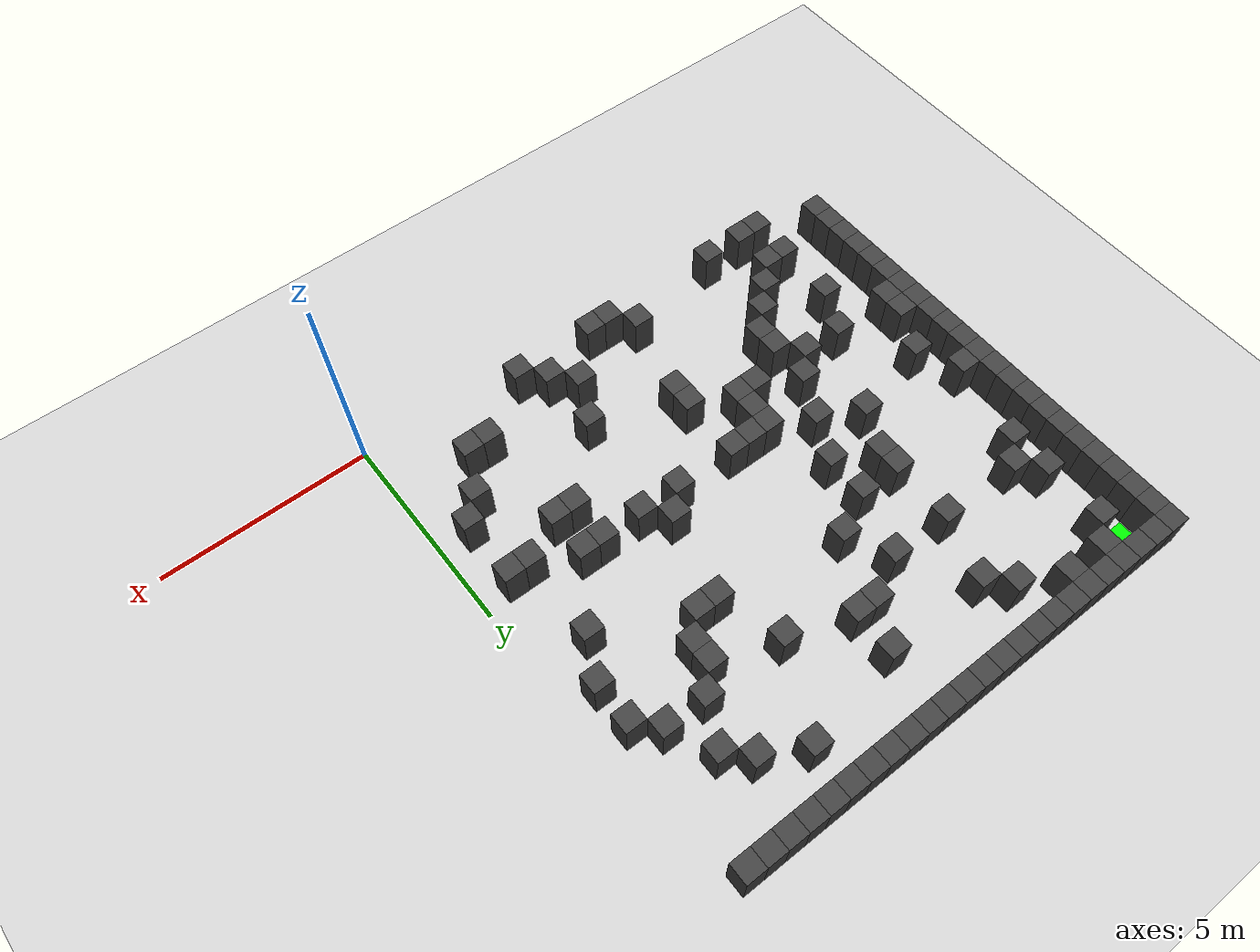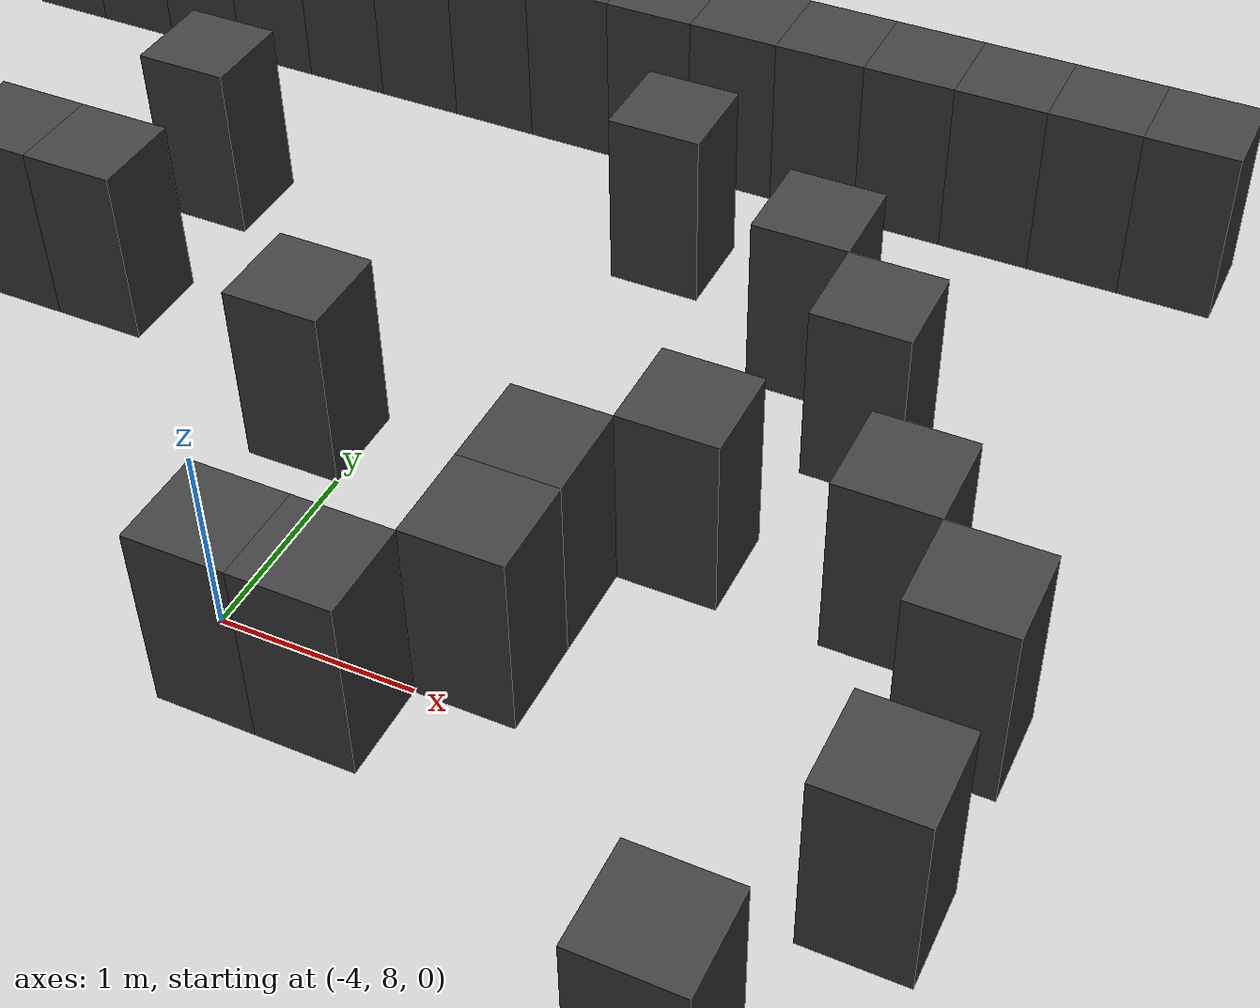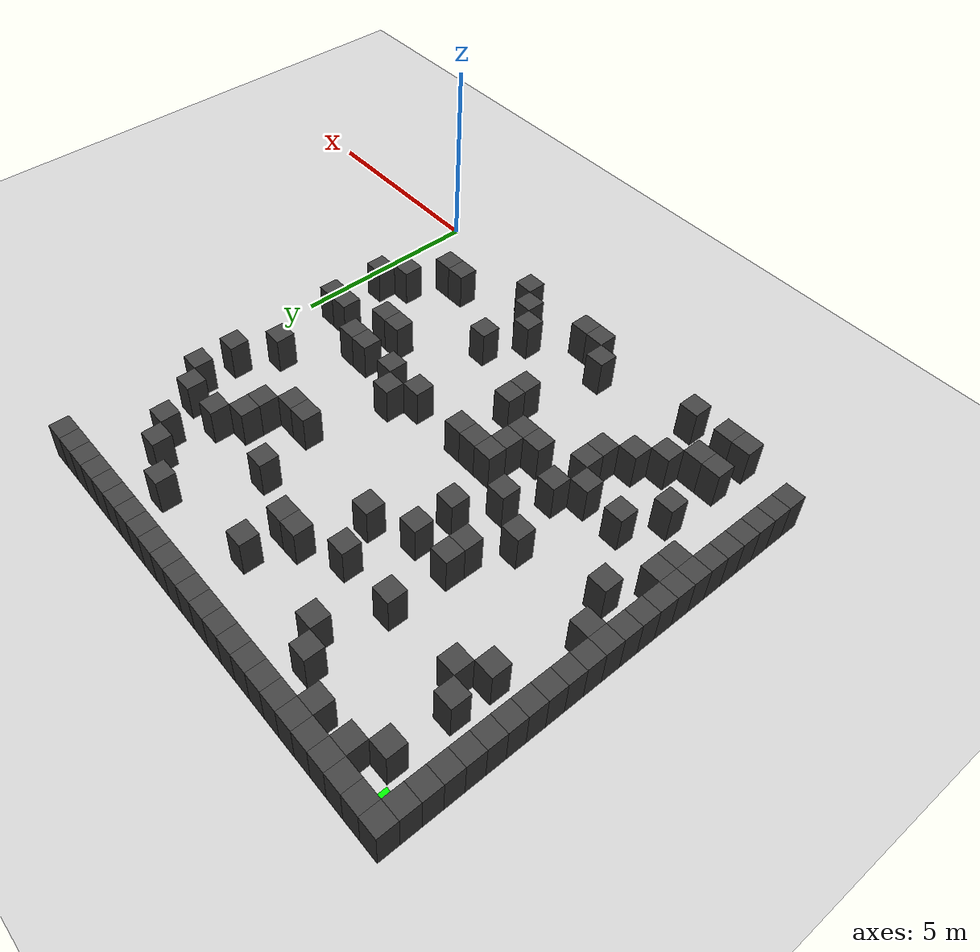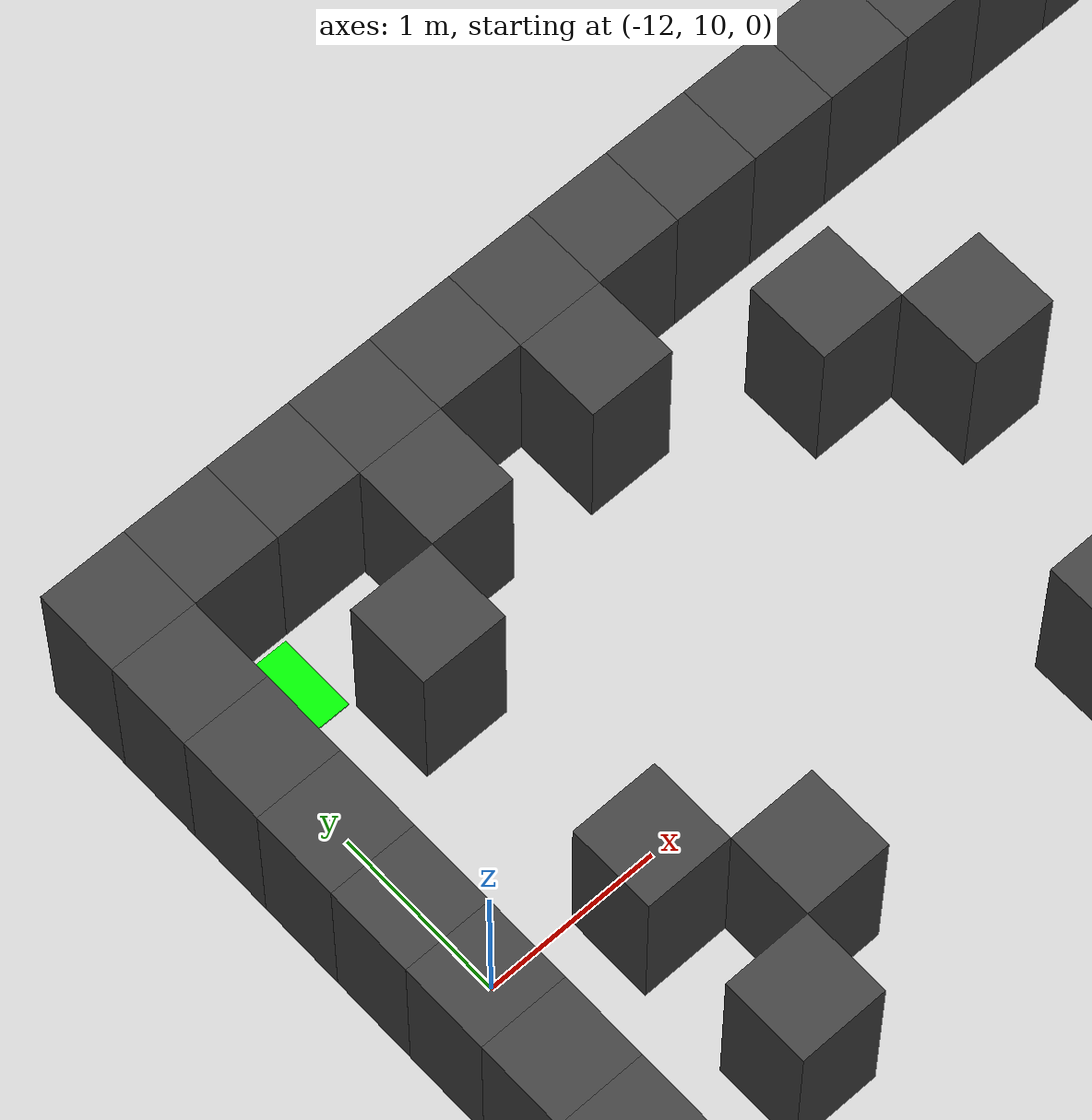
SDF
<sdf version="1.7">
 <world name="map_2523">
  <model name="ground_plane">
   <static>true</static>
   <link name="link">
    <collision name="collision">
     <geometry><plane><normal>0 0 1</normal><size>200 200</size></plane></geometry>
    </collision>
    <visual name="visual">
     <geometry><plane><normal>0 0 1</normal><size>200 200</size></plane></geometry>
     <material><ambient>0.8 0.8 0.8 1</ambient><diffuse>0.8 0.8 0.8 1</diffuse></material>
    </visual>
   </link>
  </model>
  <model name="maze_environment">
   <static>true</static>
   <link name="wall_0">
    <pose>-12.250 12.250 0.500 0 0 0</pose>
    <collision name="col"><geometry><box><size>0.5 0.5 1.0</size></box></geometry></collision>
    <visual name="vis">
     <geometry><box><size>0.5 0.5 1.0</size></box></geometry>
     <material><ambient>0.15 0.15 0.15 1</ambient><diffuse>0.25 0.25 0.25 1</diffuse></material>
    </visual>
   </link>
   <link name="wall_1">
    <pose>-11.750 12.250 0.500 0 0 0</pose>
    <collision name="col"><geometry><box><size>0.5 0.5 1.0</size></box></geometry></collision>
    <visual name="vis">
     <geometry><box><size>0.5 0.5 1.0</size></box></geometry>
     <material><ambient>0.15 0.15 0.15 1</ambient><diffuse>0.25 0.25 0.25 1</diffuse></material>
    </visual>
   </link>
   <link name="wall_2">
    <pose>-11.250 12.250 0.500 0 0 0</pose>
    <collision name="col"><geometry><box><size>0.5 0.5 1.0</size></box></geometry></collision>
    <visual name="vis">
     <geometry><box><size>0.5 0.5 1.0</size></box></geometry>
     <material><ambient>0.15 0.15 0.15 1</ambient><diffuse>0.25 0.25 0.25 1</diffuse></material>
    </visual>
   </link>
   <link name="wall_3">
    <pose>-10.750 12.250 0.500 0 0 0</pose>
    <collision name="col"><geometry><box><size>0.5 0.5 1.0</size></box></geometry></collision>
    <visual name="vis">
     <geometry><box><size>0.5 0.5 1.0</size></box></geometry>
     <material><ambient>0.15 0.15 0.15 1</ambient><diffuse>0.25 0.25 0.25 1</diffuse></material>
    </visual>
   </link>
   <link name="wall_4">
    <pose>-10.250 12.250 0.500 0 0 0</pose>
    <collision name="col"><geometry><box><size>0.5 0.5 1.0</size></box></geometry></collision>
    <visual name="vis">
     <geometry><box><size>0.5 0.5 1.0</size></box></geometry>
     <material><ambient>0.15 0.15 0.15 1</ambient><diffuse>0.25 0.25 0.25 1</diffuse></material>
    </visual>
   </link>
   <link name="wall_5">
    <pose>-9.750 12.250 0.500 0 0 0</pose>
    <collision name="col"><geometry><box><size>0.5 0.5 1.0</size></box></geometry></collision>
    <visual name="vis">
     <geometry><box><size>0.5 0.5 1.0</size></box></geometry>
     <material><ambient>0.15 0.15 0.15 1</ambient><diffuse>0.25 0.25 0.25 1</diffuse></material>
    </visual>
   </link>
   <link name="wall_6">
    <pose>-9.250 12.250 0.500 0 0 0</pose>
    <collision name="col"><geometry><box><size>0.5 0.5 1.0</size></box></geometry></collision>
    <visual name="vis">
     <geometry><box><size>0.5 0.5 1.0</size></box></geometry>
     <material><ambient>0.15 0.15 0.15 1</ambient><diffuse>0.25 0.25 0.25 1</diffuse></material>
    </visual>
   </link>
   <link name="wall_7">
    <pose>-8.750 12.250 0.500 0 0 0</pose>
    <collision name="col"><geometry><box><size>0.5 0.5 1.0</size></box></geometry></collision>
    <visual name="vis">
     <geometry><box><size>0.5 0.5 1.0</size></box></geometry>
     <material><ambient>0.15 0.15 0.15 1</ambient><diffuse>0.25 0.25 0.25 1</diffuse></material>
    </visual>
   </link>
   <link name="wall_8">
    <pose>-8.250 12.250 0.500 0 0 0</pose>
    <collision name="col"><geometry><box><size>0.5 0.5 1.0</size></box></geometry></collision>
    <visual name="vis">
     <geometry><box><size>0.5 0.5 1.0</size></box></geometry>
     <material><ambient>0.15 0.15 0.15 1</ambient><diffuse>0.25 0.25 0.25 1</diffuse></material>
    </visual>
   </link>
   <link name="wall_9">
    <pose>-7.750 12.250 0.500 0 0 0</pose>
    <collision name="col"><geometry><box><size>0.5 0.5 1.0</size></box></geometry></collision>
    <visual name="vis">
     <geometry><box><size>0.5 0.5 1.0</size></box></geometry>
     <material><ambient>0.15 0.15 0.15 1</ambient><diffuse>0.25 0.25 0.25 1</diffuse></material>
    </visual>
   </link>
   <link name="wall_10">
    <pose>-7.250 12.250 0.500 0 0 0</pose>
    <collision name="col"><geometry><box><size>0.5 0.5 1.0</size></box></geometry></collision>
    <visual name="vis">
     <geometry><box><size>0.5 0.5 1.0</size></box></geometry>
     <material><ambient>0.15 0.15 0.15 1</ambient><diffuse>0.25 0.25 0.25 1</diffuse></material>
    </visual>
   </link>
   <link name="wall_11">
    <pose>-6.750 12.250 0.500 0 0 0</pose>
    <collision name="col"><geometry><box><size>0.5 0.5 1.0</size></box></geometry></collision>
    <visual name="vis">
     <geometry><box><size>0.5 0.5 1.0</size></box></geometry>
     <material><ambient>0.15 0.15 0.15 1</ambient><diffuse>0.25 0.25 0.25 1</diffuse></material>
    </visual>
   </link>
   <link name="wall_12">
    <pose>-6.250 12.250 0.500 0 0 0</pose>
    <collision name="col"><geometry><box><size>0.5 0.5 1.0</size></box></geometry></collision>
    <visual name="vis">
     <geometry><box><size>0.5 0.5 1.0</size></box></geometry>
     <material><ambient>0.15 0.15 0.15 1</ambient><diffuse>0.25 0.25 0.25 1</diffuse></material>
    </visual>
   </link>
   <link name="wall_13">
    <pose>-5.750 12.250 0.500 0 0 0</pose>
    <collision name="col"><geometry><box><size>0.5 0.5 1.0</size></box></geometry></collision>
    <visual name="vis">
     <geometry><box><size>0.5 0.5 1.0</size></box></geometry>
     <material><ambient>0.15 0.15 0.15 1</ambient><diffuse>0.25 0.25 0.25 1</diffuse></material>
    </visual>
   </link>
   <link name="wall_14">
    <pose>-5.250 12.250 0.500 0 0 0</pose>
    <collision name="col"><geometry><box><size>0.5 0.5 1.0</size></box></geometry></collision>
    <visual name="vis">
     <geometry><box><size>0.5 0.5 1.0</size></box></geometry>
     <material><ambient>0.15 0.15 0.15 1</ambient><diffuse>0.25 0.25 0.25 1</diffuse></material>
    </visual>
   </link>
   <link name="wall_15">
    <pose>-4.750 12.250 0.500 0 0 0</pose>
    <collision name="col"><geometry><box><size>0.5 0.5 1.0</size></box></geometry></collision>
    <visual name="vis">
     <geometry><box><size>0.5 0.5 1.0</size></box></geometry>
     <material><ambient>0.15 0.15 0.15 1</ambient><diffuse>0.25 0.25 0.25 1</diffuse></material>
    </visual>
   </link>
   <link name="wall_16">
    <pose>-4.250 12.250 0.500 0 0 0</pose>
    <collision name="col"><geometry><box><size>0.5 0.5 1.0</size></box></geometry></collision>
    <visual name="vis">
     <geometry><box><size>0.5 0.5 1.0</size></box></geometry>
     <material><ambient>0.15 0.15 0.15 1</ambient><diffuse>0.25 0.25 0.25 1</diffuse></material>
    </visual>
   </link>
   <link name="wall_17">
    <pose>-3.750 12.250 0.500 0 0 0</pose>
    <collision name="col"><geometry><box><size>0.5 0.5 1.0</size></box></geometry></collision>
    <visual name="vis">
     <geometry><box><size>0.5 0.5 1.0</size></box></geometry>
     <material><ambient>0.15 0.15 0.15 1</ambient><diffuse>0.25 0.25 0.25 1</diffuse></material>
    </visual>
   </link>
   <link name="wall_18">
    <pose>-3.250 12.250 0.500 0 0 0</pose>
    <collision name="col"><geometry><box><size>0.5 0.5 1.0</size></box></geometry></collision>
    <visual name="vis">
     <geometry><box><size>0.5 0.5 1.0</size></box></geometry>
     <material><ambient>0.15 0.15 0.15 1</ambient><diffuse>0.25 0.25 0.25 1</diffuse></material>
    </visual>
   </link>
   <link name="wall_19">
    <pose>-2.750 12.250 0.500 0 0 0</pose>
    <collision name="col"><geometry><box><size>0.5 0.5 1.0</size></box></geometry></collision>
    <visual name="vis">
     <geometry><box><size>0.5 0.5 1.0</size></box></geometry>
     <material><ambient>0.15 0.15 0.15 1</ambient><diffuse>0.25 0.25 0.25 1</diffuse></material>
    </visual>
   </link>
   <link name="wall_20">
    <pose>-2.250 12.250 0.500 0 0 0</pose>
    <collision name="col"><geometry><box><size>0.5 0.5 1.0</size></box></geometry></collision>
    <visual name="vis">
     <geometry><box><size>0.5 0.5 1.0</size></box></geometry>
     <material><ambient>0.15 0.15 0.15 1</ambient><diffuse>0.25 0.25 0.25 1</diffuse></material>
    </visual>
   </link>
   <link name="wall_21">
    <pose>-1.750 12.250 0.500 0 0 0</pose>
    <collision name="col"><geometry><box><size>0.5 0.5 1.0</size></box></geometry></collision>
    <visual name="vis">
     <geometry><box><size>0.5 0.5 1.0</size></box></geometry>
     <material><ambient>0.15 0.15 0.15 1</ambient><diffuse>0.25 0.25 0.25 1</diffuse></material>
    </visual>
   </link>
   <link name="wall_22">
    <pose>-1.250 12.250 0.500 0 0 0</pose>
    <collision name="col"><geometry><box><size>0.5 0.5 1.0</size></box></geometry></collision>
    <visual name="vis">
     <geometry><box><size>0.5 0.5 1.0</size></box></geometry>
     <material><ambient>0.15 0.15 0.15 1</ambient><diffuse>0.25 0.25 0.25 1</diffuse></material>
    </visual>
   </link>
   <link name="wall_23">
    <pose>-0.750 12.250 0.500 0 0 0</pose>
    <collision name="col"><geometry><box><size>0.5 0.5 1.0</size></box></geometry></collision>
    <visual name="vis">
     <geometry><box><size>0.5 0.5 1.0</size></box></geometry>
     <material><ambient>0.15 0.15 0.15 1</ambient><diffuse>0.25 0.25 0.25 1</diffuse></material>
    </visual>
   </link>
   <link name="wall_50">
    <pose>-12.250 11.750 0.500 0 0 0</pose>
    <collision name="col"><geometry><box><size>0.5 0.5 1.0</size></box></geometry></collision>
    <visual name="vis">
     <geometry><box><size>0.5 0.5 1.0</size></box></geometry>
     <material><ambient>0.15 0.15 0.15 1</ambient><diffuse>0.25 0.25 0.25 1</diffuse></material>
    </visual>
   </link>
   <link name="wall_51">
    <pose>-10.750 11.750 0.500 0 0 0</pose>
    <collision name="col"><geometry><box><size>0.5 0.5 1.0</size></box></geometry></collision>
    <visual name="vis">
     <geometry><box><size>0.5 0.5 1.0</size></box></geometry>
     <material><ambient>0.15 0.15 0.15 1</ambient><diffuse>0.25 0.25 0.25 1</diffuse></material>
    </visual>
   </link>
   <link name="wall_52">
    <pose>-9.750 11.750 0.500 0 0 0</pose>
    <collision name="col"><geometry><box><size>0.5 0.5 1.0</size></box></geometry></collision>
    <visual name="vis">
     <geometry><box><size>0.5 0.5 1.0</size></box></geometry>
     <material><ambient>0.15 0.15 0.15 1</ambient><diffuse>0.25 0.25 0.25 1</diffuse></material>
    </visual>
   </link>
   <link name="wall_59">
    <pose>-12.250 11.250 0.500 0 0 0</pose>
    <collision name="col"><geometry><box><size>0.5 0.5 1.0</size></box></geometry></collision>
    <visual name="vis">
     <geometry><box><size>0.5 0.5 1.0</size></box></geometry>
     <material><ambient>0.15 0.15 0.15 1</ambient><diffuse>0.25 0.25 0.25 1</diffuse></material>
    </visual>
   </link>
   <link name="wall_60">
    <pose>-11.250 11.250 0.500 0 0 0</pose>
    <collision name="col"><geometry><box><size>0.5 0.5 1.0</size></box></geometry></collision>
    <visual name="vis">
     <geometry><box><size>0.5 0.5 1.0</size></box></geometry>
     <material><ambient>0.15 0.15 0.15 1</ambient><diffuse>0.25 0.25 0.25 1</diffuse></material>
    </visual>
   </link>
   <link name="wall_61">
    <pose>-8.750 11.250 0.500 0 0 0</pose>
    <collision name="col"><geometry><box><size>0.5 0.5 1.0</size></box></geometry></collision>
    <visual name="vis">
     <geometry><box><size>0.5 0.5 1.0</size></box></geometry>
     <material><ambient>0.15 0.15 0.15 1</ambient><diffuse>0.25 0.25 0.25 1</diffuse></material>
    </visual>
   </link>
   <link name="wall_62">
    <pose>-3.250 11.250 0.500 0 0 0</pose>
    <collision name="col"><geometry><box><size>0.5 0.5 1.0</size></box></geometry></collision>
    <visual name="vis">
     <geometry><box><size>0.5 0.5 1.0</size></box></geometry>
     <material><ambient>0.15 0.15 0.15 1</ambient><diffuse>0.25 0.25 0.25 1</diffuse></material>
    </visual>
   </link>
   <link name="wall_66">
    <pose>-12.250 10.750 0.500 0 0 0</pose>
    <collision name="col"><geometry><box><size>0.5 0.5 1.0</size></box></geometry></collision>
    <visual name="vis">
     <geometry><box><size>0.5 0.5 1.0</size></box></geometry>
     <material><ambient>0.15 0.15 0.15 1</ambient><diffuse>0.25 0.25 0.25 1</diffuse></material>
    </visual>
   </link>
   <link name="wall_67">
    <pose>-8.250 10.750 0.500 0 0 0</pose>
    <collision name="col"><geometry><box><size>0.5 0.5 1.0</size></box></geometry></collision>
    <visual name="vis">
     <geometry><box><size>0.5 0.5 1.0</size></box></geometry>
     <material><ambient>0.15 0.15 0.15 1</ambient><diffuse>0.25 0.25 0.25 1</diffuse></material>
    </visual>
   </link>
   <link name="wall_68">
    <pose>-5.750 10.750 0.500 0 0 0</pose>
    <collision name="col"><geometry><box><size>0.5 0.5 1.0</size></box></geometry></collision>
    <visual name="vis">
     <geometry><box><size>0.5 0.5 1.0</size></box></geometry>
     <material><ambient>0.15 0.15 0.15 1</ambient><diffuse>0.25 0.25 0.25 1</diffuse></material>
    </visual>
   </link>
   <link name="wall_69">
    <pose>-2.250 10.750 0.500 0 0 0</pose>
    <collision name="col"><geometry><box><size>0.5 0.5 1.0</size></box></geometry></collision>
    <visual name="vis">
     <geometry><box><size>0.5 0.5 1.0</size></box></geometry>
     <material><ambient>0.15 0.15 0.15 1</ambient><diffuse>0.25 0.25 0.25 1</diffuse></material>
    </visual>
   </link>
   <link name="wall_74">
    <pose>-12.250 10.250 0.500 0 0 0</pose>
    <collision name="col"><geometry><box><size>0.5 0.5 1.0</size></box></geometry></collision>
    <visual name="vis">
     <geometry><box><size>0.5 0.5 1.0</size></box></geometry>
     <material><ambient>0.15 0.15 0.15 1</ambient><diffuse>0.25 0.25 0.25 1</diffuse></material>
    </visual>
   </link>
   <link name="wall_75">
    <pose>-1.750 10.250 0.500 0 0 0</pose>
    <collision name="col"><geometry><box><size>0.5 0.5 1.0</size></box></geometry></collision>
    <visual name="vis">
     <geometry><box><size>0.5 0.5 1.0</size></box></geometry>
     <material><ambient>0.15 0.15 0.15 1</ambient><diffuse>0.25 0.25 0.25 1</diffuse></material>
    </visual>
   </link>
   <link name="wall_82">
    <pose>-12.250 9.750 0.500 0 0 0</pose>
    <collision name="col"><geometry><box><size>0.5 0.5 1.0</size></box></geometry></collision>
    <visual name="vis">
     <geometry><box><size>0.5 0.5 1.0</size></box></geometry>
     <material><ambient>0.15 0.15 0.15 1</ambient><diffuse>0.25 0.25 0.25 1</diffuse></material>
    </visual>
   </link>
   <link name="wall_83">
    <pose>-11.250 9.750 0.500 0 0 0</pose>
    <collision name="col"><geometry><box><size>0.5 0.5 1.0</size></box></geometry></collision>
    <visual name="vis">
     <geometry><box><size>0.5 0.5 1.0</size></box></geometry>
     <material><ambient>0.15 0.15 0.15 1</ambient><diffuse>0.25 0.25 0.25 1</diffuse></material>
    </visual>
   </link>
   <link name="wall_84">
    <pose>-6.250 9.750 0.500 0 0 0</pose>
    <collision name="col"><geometry><box><size>0.5 0.5 1.0</size></box></geometry></collision>
    <visual name="vis">
     <geometry><box><size>0.5 0.5 1.0</size></box></geometry>
     <material><ambient>0.15 0.15 0.15 1</ambient><diffuse>0.25 0.25 0.25 1</diffuse></material>
    </visual>
   </link>
   <link name="wall_85">
    <pose>-5.750 9.750 0.500 0 0 0</pose>
    <collision name="col"><geometry><box><size>0.5 0.5 1.0</size></box></geometry></collision>
    <visual name="vis">
     <geometry><box><size>0.5 0.5 1.0</size></box></geometry>
     <material><ambient>0.15 0.15 0.15 1</ambient><diffuse>0.25 0.25 0.25 1</diffuse></material>
    </visual>
   </link>
   <link name="wall_91">
    <pose>-12.250 9.250 0.500 0 0 0</pose>
    <collision name="col"><geometry><box><size>0.5 0.5 1.0</size></box></geometry></collision>
    <visual name="vis">
     <geometry><box><size>0.5 0.5 1.0</size></box></geometry>
     <material><ambient>0.15 0.15 0.15 1</ambient><diffuse>0.25 0.25 0.25 1</diffuse></material>
    </visual>
   </link>
   <link name="wall_92">
    <pose>-10.750 9.250 0.500 0 0 0</pose>
    <collision name="col"><geometry><box><size>0.5 0.5 1.0</size></box></geometry></collision>
    <visual name="vis">
     <geometry><box><size>0.5 0.5 1.0</size></box></geometry>
     <material><ambient>0.15 0.15 0.15 1</ambient><diffuse>0.25 0.25 0.25 1</diffuse></material>
    </visual>
   </link>
   <link name="wall_93">
    <pose>-8.750 9.250 0.500 0 0 0</pose>
    <collision name="col"><geometry><box><size>0.5 0.5 1.0</size></box></geometry></collision>
    <visual name="vis">
     <geometry><box><size>0.5 0.5 1.0</size></box></geometry>
     <material><ambient>0.15 0.15 0.15 1</ambient><diffuse>0.25 0.25 0.25 1</diffuse></material>
    </visual>
   </link>
   <link name="wall_94">
    <pose>-7.250 9.250 0.500 0 0 0</pose>
    <collision name="col"><geometry><box><size>0.5 0.5 1.0</size></box></geometry></collision>
    <visual name="vis">
     <geometry><box><size>0.5 0.5 1.0</size></box></geometry>
     <material><ambient>0.15 0.15 0.15 1</ambient><diffuse>0.25 0.25 0.25 1</diffuse></material>
    </visual>
   </link>
   <link name="wall_95">
    <pose>-4.250 9.250 0.500 0 0 0</pose>
    <collision name="col"><geometry><box><size>0.5 0.5 1.0</size></box></geometry></collision>
    <visual name="vis">
     <geometry><box><size>0.5 0.5 1.0</size></box></geometry>
     <material><ambient>0.15 0.15 0.15 1</ambient><diffuse>0.25 0.25 0.25 1</diffuse></material>
    </visual>
   </link>
   <link name="wall_96">
    <pose>-2.250 9.250 0.500 0 0 0</pose>
    <collision name="col"><geometry><box><size>0.5 0.5 1.0</size></box></geometry></collision>
    <visual name="vis">
     <geometry><box><size>0.5 0.5 1.0</size></box></geometry>
     <material><ambient>0.15 0.15 0.15 1</ambient><diffuse>0.25 0.25 0.25 1</diffuse></material>
    </visual>
   </link>
   <link name="wall_97">
    <pose>-1.250 9.250 0.500 0 0 0</pose>
    <collision name="col"><geometry><box><size>0.5 0.5 1.0</size></box></geometry></collision>
    <visual name="vis">
     <geometry><box><size>0.5 0.5 1.0</size></box></geometry>
     <material><ambient>0.15 0.15 0.15 1</ambient><diffuse>0.25 0.25 0.25 1</diffuse></material>
    </visual>
   </link>
   <link name="wall_101">
    <pose>-12.250 8.750 0.500 0 0 0</pose>
    <collision name="col"><geometry><box><size>0.5 0.5 1.0</size></box></geometry></collision>
    <visual name="vis">
     <geometry><box><size>0.5 0.5 1.0</size></box></geometry>
     <material><ambient>0.15 0.15 0.15 1</ambient><diffuse>0.25 0.25 0.25 1</diffuse></material>
    </visual>
   </link>
   <link name="wall_102">
    <pose>-11.250 8.750 0.500 0 0 0</pose>
    <collision name="col"><geometry><box><size>0.5 0.5 1.0</size></box></geometry></collision>
    <visual name="vis">
     <geometry><box><size>0.5 0.5 1.0</size></box></geometry>
     <material><ambient>0.15 0.15 0.15 1</ambient><diffuse>0.25 0.25 0.25 1</diffuse></material>
    </visual>
   </link>
   <link name="wall_103">
    <pose>-2.750 8.750 0.500 0 0 0</pose>
    <collision name="col"><geometry><box><size>0.5 0.5 1.0</size></box></geometry></collision>
    <visual name="vis">
     <geometry><box><size>0.5 0.5 1.0</size></box></geometry>
     <material><ambient>0.15 0.15 0.15 1</ambient><diffuse>0.25 0.25 0.25 1</diffuse></material>
    </visual>
   </link>
   <link name="wall_104">
    <pose>-0.750 8.750 0.500 0 0 0</pose>
    <collision name="col"><geometry><box><size>0.5 0.5 1.0</size></box></geometry></collision>
    <visual name="vis">
     <geometry><box><size>0.5 0.5 1.0</size></box></geometry>
     <material><ambient>0.15 0.15 0.15 1</ambient><diffuse>0.25 0.25 0.25 1</diffuse></material>
    </visual>
   </link>
   <link name="wall_111">
    <pose>-12.250 8.250 0.500 0 0 0</pose>
    <collision name="col"><geometry><box><size>0.5 0.5 1.0</size></box></geometry></collision>
    <visual name="vis">
     <geometry><box><size>0.5 0.5 1.0</size></box></geometry>
     <material><ambient>0.15 0.15 0.15 1</ambient><diffuse>0.25 0.25 0.25 1</diffuse></material>
    </visual>
   </link>
   <link name="wall_112">
    <pose>-6.750 8.250 0.500 0 0 0</pose>
    <collision name="col"><geometry><box><size>0.5 0.5 1.0</size></box></geometry></collision>
    <visual name="vis">
     <geometry><box><size>0.5 0.5 1.0</size></box></geometry>
     <material><ambient>0.15 0.15 0.15 1</ambient><diffuse>0.25 0.25 0.25 1</diffuse></material>
    </visual>
   </link>
   <link name="wall_113">
    <pose>-2.750 8.250 0.500 0 0 0</pose>
    <collision name="col"><geometry><box><size>0.5 0.5 1.0</size></box></geometry></collision>
    <visual name="vis">
     <geometry><box><size>0.5 0.5 1.0</size></box></geometry>
     <material><ambient>0.15 0.15 0.15 1</ambient><diffuse>0.25 0.25 0.25 1</diffuse></material>
    </visual>
   </link>
   <link name="wall_118">
    <pose>-12.250 7.750 0.500 0 0 0</pose>
    <collision name="col"><geometry><box><size>0.5 0.5 1.0</size></box></geometry></collision>
    <visual name="vis">
     <geometry><box><size>0.5 0.5 1.0</size></box></geometry>
     <material><ambient>0.15 0.15 0.15 1</ambient><diffuse>0.25 0.25 0.25 1</diffuse></material>
    </visual>
   </link>
   <link name="wall_119">
    <pose>-8.750 7.750 0.500 0 0 0</pose>
    <collision name="col"><geometry><box><size>0.5 0.5 1.0</size></box></geometry></collision>
    <visual name="vis">
     <geometry><box><size>0.5 0.5 1.0</size></box></geometry>
     <material><ambient>0.15 0.15 0.15 1</ambient><diffuse>0.25 0.25 0.25 1</diffuse></material>
    </visual>
   </link>
   <link name="wall_120">
    <pose>-7.750 7.750 0.500 0 0 0</pose>
    <collision name="col"><geometry><box><size>0.5 0.5 1.0</size></box></geometry></collision>
    <visual name="vis">
     <geometry><box><size>0.5 0.5 1.0</size></box></geometry>
     <material><ambient>0.15 0.15 0.15 1</ambient><diffuse>0.25 0.25 0.25 1</diffuse></material>
    </visual>
   </link>
   <link name="wall_121">
    <pose>-3.750 7.750 0.500 0 0 0</pose>
    <collision name="col"><geometry><box><size>0.5 0.5 1.0</size></box></geometry></collision>
    <visual name="vis">
     <geometry><box><size>0.5 0.5 1.0</size></box></geometry>
     <material><ambient>0.15 0.15 0.15 1</ambient><diffuse>0.25 0.25 0.25 1</diffuse></material>
    </visual>
   </link>
   <link name="wall_122">
    <pose>-3.250 7.750 0.500 0 0 0</pose>
    <collision name="col"><geometry><box><size>0.5 0.5 1.0</size></box></geometry></collision>
    <visual name="vis">
     <geometry><box><size>0.5 0.5 1.0</size></box></geometry>
     <material><ambient>0.15 0.15 0.15 1</ambient><diffuse>0.25 0.25 0.25 1</diffuse></material>
    </visual>
   </link>
   <link name="wall_123">
    <pose>-0.750 7.750 0.500 0 0 0</pose>
    <collision name="col"><geometry><box><size>0.5 0.5 1.0</size></box></geometry></collision>
    <visual name="vis">
     <geometry><box><size>0.5 0.5 1.0</size></box></geometry>
     <material><ambient>0.15 0.15 0.15 1</ambient><diffuse>0.25 0.25 0.25 1</diffuse></material>
    </visual>
   </link>
   <link name="wall_129">
    <pose>-12.250 7.250 0.500 0 0 0</pose>
    <collision name="col"><geometry><box><size>0.5 0.5 1.0</size></box></geometry></collision>
    <visual name="vis">
     <geometry><box><size>0.5 0.5 1.0</size></box></geometry>
     <material><ambient>0.15 0.15 0.15 1</ambient><diffuse>0.25 0.25 0.25 1</diffuse></material>
    </visual>
   </link>
   <link name="wall_130">
    <pose>-8.750 7.250 0.500 0 0 0</pose>
    <collision name="col"><geometry><box><size>0.5 0.5 1.0</size></box></geometry></collision>
    <visual name="vis">
     <geometry><box><size>0.5 0.5 1.0</size></box></geometry>
     <material><ambient>0.15 0.15 0.15 1</ambient><diffuse>0.25 0.25 0.25 1</diffuse></material>
    </visual>
   </link>
   <link name="wall_138">
    <pose>-12.250 6.750 0.500 0 0 0</pose>
    <collision name="col"><geometry><box><size>0.5 0.5 1.0</size></box></geometry></collision>
    <visual name="vis">
     <geometry><box><size>0.5 0.5 1.0</size></box></geometry>
     <material><ambient>0.15 0.15 0.15 1</ambient><diffuse>0.25 0.25 0.25 1</diffuse></material>
    </visual>
   </link>
   <link name="wall_139">
    <pose>-11.750 6.750 0.500 0 0 0</pose>
    <collision name="col"><geometry><box><size>0.5 0.5 1.0</size></box></geometry></collision>
    <visual name="vis">
     <geometry><box><size>0.5 0.5 1.0</size></box></geometry>
     <material><ambient>0.15 0.15 0.15 1</ambient><diffuse>0.25 0.25 0.25 1</diffuse></material>
    </visual>
   </link>
   <link name="wall_140">
    <pose>-7.750 6.750 0.500 0 0 0</pose>
    <collision name="col"><geometry><box><size>0.5 0.5 1.0</size></box></geometry></collision>
    <visual name="vis">
     <geometry><box><size>0.5 0.5 1.0</size></box></geometry>
     <material><ambient>0.15 0.15 0.15 1</ambient><diffuse>0.25 0.25 0.25 1</diffuse></material>
    </visual>
   </link>
   <link name="wall_141">
    <pose>-1.250 6.750 0.500 0 0 0</pose>
    <collision name="col"><geometry><box><size>0.5 0.5 1.0</size></box></geometry></collision>
    <visual name="vis">
     <geometry><box><size>0.5 0.5 1.0</size></box></geometry>
     <material><ambient>0.15 0.15 0.15 1</ambient><diffuse>0.25 0.25 0.25 1</diffuse></material>
    </visual>
   </link>
   <link name="wall_145">
    <pose>-12.250 6.250 0.500 0 0 0</pose>
    <collision name="col"><geometry><box><size>0.5 0.5 1.0</size></box></geometry></collision>
    <visual name="vis">
     <geometry><box><size>0.5 0.5 1.0</size></box></geometry>
     <material><ambient>0.15 0.15 0.15 1</ambient><diffuse>0.25 0.25 0.25 1</diffuse></material>
    </visual>
   </link>
   <link name="wall_146">
    <pose>-9.250 6.250 0.500 0 0 0</pose>
    <collision name="col"><geometry><box><size>0.5 0.5 1.0</size></box></geometry></collision>
    <visual name="vis">
     <geometry><box><size>0.5 0.5 1.0</size></box></geometry>
     <material><ambient>0.15 0.15 0.15 1</ambient><diffuse>0.25 0.25 0.25 1</diffuse></material>
    </visual>
   </link>
   <link name="wall_153">
    <pose>-12.250 5.750 0.500 0 0 0</pose>
    <collision name="col"><geometry><box><size>0.5 0.5 1.0</size></box></geometry></collision>
    <visual name="vis">
     <geometry><box><size>0.5 0.5 1.0</size></box></geometry>
     <material><ambient>0.15 0.15 0.15 1</ambient><diffuse>0.25 0.25 0.25 1</diffuse></material>
    </visual>
   </link>
   <link name="wall_154">
    <pose>-11.250 5.750 0.500 0 0 0</pose>
    <collision name="col"><geometry><box><size>0.5 0.5 1.0</size></box></geometry></collision>
    <visual name="vis">
     <geometry><box><size>0.5 0.5 1.0</size></box></geometry>
     <material><ambient>0.15 0.15 0.15 1</ambient><diffuse>0.25 0.25 0.25 1</diffuse></material>
    </visual>
   </link>
   <link name="wall_155">
    <pose>-8.250 5.750 0.500 0 0 0</pose>
    <collision name="col"><geometry><box><size>0.5 0.5 1.0</size></box></geometry></collision>
    <visual name="vis">
     <geometry><box><size>0.5 0.5 1.0</size></box></geometry>
     <material><ambient>0.15 0.15 0.15 1</ambient><diffuse>0.25 0.25 0.25 1</diffuse></material>
    </visual>
   </link>
   <link name="wall_156">
    <pose>-4.250 5.750 0.500 0 0 0</pose>
    <collision name="col"><geometry><box><size>0.5 0.5 1.0</size></box></geometry></collision>
    <visual name="vis">
     <geometry><box><size>0.5 0.5 1.0</size></box></geometry>
     <material><ambient>0.15 0.15 0.15 1</ambient><diffuse>0.25 0.25 0.25 1</diffuse></material>
    </visual>
   </link>
   <link name="wall_159">
    <pose>-12.250 5.250 0.500 0 0 0</pose>
    <collision name="col"><geometry><box><size>0.5 0.5 1.0</size></box></geometry></collision>
    <visual name="vis">
     <geometry><box><size>0.5 0.5 1.0</size></box></geometry>
     <material><ambient>0.15 0.15 0.15 1</ambient><diffuse>0.25 0.25 0.25 1</diffuse></material>
    </visual>
   </link>
   <link name="wall_160">
    <pose>-7.250 5.250 0.500 0 0 0</pose>
    <collision name="col"><geometry><box><size>0.5 0.5 1.0</size></box></geometry></collision>
    <visual name="vis">
     <geometry><box><size>0.5 0.5 1.0</size></box></geometry>
     <material><ambient>0.15 0.15 0.15 1</ambient><diffuse>0.25 0.25 0.25 1</diffuse></material>
    </visual>
   </link>
   <link name="wall_161">
    <pose>-6.750 5.250 0.500 0 0 0</pose>
    <collision name="col"><geometry><box><size>0.5 0.5 1.0</size></box></geometry></collision>
    <visual name="vis">
     <geometry><box><size>0.5 0.5 1.0</size></box></geometry>
     <material><ambient>0.15 0.15 0.15 1</ambient><diffuse>0.25 0.25 0.25 1</diffuse></material>
    </visual>
   </link>
   <link name="wall_162">
    <pose>-6.250 5.250 0.500 0 0 0</pose>
    <collision name="col"><geometry><box><size>0.5 0.5 1.0</size></box></geometry></collision>
    <visual name="vis">
     <geometry><box><size>0.5 0.5 1.0</size></box></geometry>
     <material><ambient>0.15 0.15 0.15 1</ambient><diffuse>0.25 0.25 0.25 1</diffuse></material>
    </visual>
   </link>
   <link name="wall_163">
    <pose>-4.750 5.250 0.500 0 0 0</pose>
    <collision name="col"><geometry><box><size>0.5 0.5 1.0</size></box></geometry></collision>
    <visual name="vis">
     <geometry><box><size>0.5 0.5 1.0</size></box></geometry>
     <material><ambient>0.15 0.15 0.15 1</ambient><diffuse>0.25 0.25 0.25 1</diffuse></material>
    </visual>
   </link>
   <link name="wall_164">
    <pose>-3.750 5.250 0.500 0 0 0</pose>
    <collision name="col"><geometry><box><size>0.5 0.5 1.0</size></box></geometry></collision>
    <visual name="vis">
     <geometry><box><size>0.5 0.5 1.0</size></box></geometry>
     <material><ambient>0.15 0.15 0.15 1</ambient><diffuse>0.25 0.25 0.25 1</diffuse></material>
    </visual>
   </link>
   <link name="wall_165">
    <pose>-2.750 5.250 0.500 0 0 0</pose>
    <collision name="col"><geometry><box><size>0.5 0.5 1.0</size></box></geometry></collision>
    <visual name="vis">
     <geometry><box><size>0.5 0.5 1.0</size></box></geometry>
     <material><ambient>0.15 0.15 0.15 1</ambient><diffuse>0.25 0.25 0.25 1</diffuse></material>
    </visual>
   </link>
   <link name="wall_166">
    <pose>-2.250 5.250 0.500 0 0 0</pose>
    <collision name="col"><geometry><box><size>0.5 0.5 1.0</size></box></geometry></collision>
    <visual name="vis">
     <geometry><box><size>0.5 0.5 1.0</size></box></geometry>
     <material><ambient>0.15 0.15 0.15 1</ambient><diffuse>0.25 0.25 0.25 1</diffuse></material>
    </visual>
   </link>
   <link name="wall_170">
    <pose>-12.250 4.750 0.500 0 0 0</pose>
    <collision name="col"><geometry><box><size>0.5 0.5 1.0</size></box></geometry></collision>
    <visual name="vis">
     <geometry><box><size>0.5 0.5 1.0</size></box></geometry>
     <material><ambient>0.15 0.15 0.15 1</ambient><diffuse>0.25 0.25 0.25 1</diffuse></material>
    </visual>
   </link>
   <link name="wall_171">
    <pose>-11.750 4.750 0.500 0 0 0</pose>
    <collision name="col"><geometry><box><size>0.5 0.5 1.0</size></box></geometry></collision>
    <visual name="vis">
     <geometry><box><size>0.5 0.5 1.0</size></box></geometry>
     <material><ambient>0.15 0.15 0.15 1</ambient><diffuse>0.25 0.25 0.25 1</diffuse></material>
    </visual>
   </link>
   <link name="wall_172">
    <pose>-8.750 4.750 0.500 0 0 0</pose>
    <collision name="col"><geometry><box><size>0.5 0.5 1.0</size></box></geometry></collision>
    <visual name="vis">
     <geometry><box><size>0.5 0.5 1.0</size></box></geometry>
     <material><ambient>0.15 0.15 0.15 1</ambient><diffuse>0.25 0.25 0.25 1</diffuse></material>
    </visual>
   </link>
   <link name="wall_173">
    <pose>-7.250 4.750 0.500 0 0 0</pose>
    <collision name="col"><geometry><box><size>0.5 0.5 1.0</size></box></geometry></collision>
    <visual name="vis">
     <geometry><box><size>0.5 0.5 1.0</size></box></geometry>
     <material><ambient>0.15 0.15 0.15 1</ambient><diffuse>0.25 0.25 0.25 1</diffuse></material>
    </visual>
   </link>
   <link name="wall_174">
    <pose>-1.250 4.750 0.500 0 0 0</pose>
    <collision name="col"><geometry><box><size>0.5 0.5 1.0</size></box></geometry></collision>
    <visual name="vis">
     <geometry><box><size>0.5 0.5 1.0</size></box></geometry>
     <material><ambient>0.15 0.15 0.15 1</ambient><diffuse>0.25 0.25 0.25 1</diffuse></material>
    </visual>
   </link>
   <link name="wall_175">
    <pose>-0.750 4.750 0.500 0 0 0</pose>
    <collision name="col"><geometry><box><size>0.5 0.5 1.0</size></box></geometry></collision>
    <visual name="vis">
     <geometry><box><size>0.5 0.5 1.0</size></box></geometry>
     <material><ambient>0.15 0.15 0.15 1</ambient><diffuse>0.25 0.25 0.25 1</diffuse></material>
    </visual>
   </link>
   <link name="wall_181">
    <pose>-12.250 4.250 0.500 0 0 0</pose>
    <collision name="col"><geometry><box><size>0.5 0.5 1.0</size></box></geometry></collision>
    <visual name="vis">
     <geometry><box><size>0.5 0.5 1.0</size></box></geometry>
     <material><ambient>0.15 0.15 0.15 1</ambient><diffuse>0.25 0.25 0.25 1</diffuse></material>
    </visual>
   </link>
   <link name="wall_182">
    <pose>-11.750 4.250 0.500 0 0 0</pose>
    <collision name="col"><geometry><box><size>0.5 0.5 1.0</size></box></geometry></collision>
    <visual name="vis">
     <geometry><box><size>0.5 0.5 1.0</size></box></geometry>
     <material><ambient>0.15 0.15 0.15 1</ambient><diffuse>0.25 0.25 0.25 1</diffuse></material>
    </visual>
   </link>
   <link name="wall_183">
    <pose>-10.250 4.250 0.500 0 0 0</pose>
    <collision name="col"><geometry><box><size>0.5 0.5 1.0</size></box></geometry></collision>
    <visual name="vis">
     <geometry><box><size>0.5 0.5 1.0</size></box></geometry>
     <material><ambient>0.15 0.15 0.15 1</ambient><diffuse>0.25 0.25 0.25 1</diffuse></material>
    </visual>
   </link>
   <link name="wall_184">
    <pose>-9.250 4.250 0.500 0 0 0</pose>
    <collision name="col"><geometry><box><size>0.5 0.5 1.0</size></box></geometry></collision>
    <visual name="vis">
     <geometry><box><size>0.5 0.5 1.0</size></box></geometry>
     <material><ambient>0.15 0.15 0.15 1</ambient><diffuse>0.25 0.25 0.25 1</diffuse></material>
    </visual>
   </link>
   <link name="wall_185">
    <pose>-7.750 4.250 0.500 0 0 0</pose>
    <collision name="col"><geometry><box><size>0.5 0.5 1.0</size></box></geometry></collision>
    <visual name="vis">
     <geometry><box><size>0.5 0.5 1.0</size></box></geometry>
     <material><ambient>0.15 0.15 0.15 1</ambient><diffuse>0.25 0.25 0.25 1</diffuse></material>
    </visual>
   </link>
   <link name="wall_186">
    <pose>-7.250 4.250 0.500 0 0 0</pose>
    <collision name="col"><geometry><box><size>0.5 0.5 1.0</size></box></geometry></collision>
    <visual name="vis">
     <geometry><box><size>0.5 0.5 1.0</size></box></geometry>
     <material><ambient>0.15 0.15 0.15 1</ambient><diffuse>0.25 0.25 0.25 1</diffuse></material>
    </visual>
   </link>
   <link name="wall_187">
    <pose>-2.750 4.250 0.500 0 0 0</pose>
    <collision name="col"><geometry><box><size>0.5 0.5 1.0</size></box></geometry></collision>
    <visual name="vis">
     <geometry><box><size>0.5 0.5 1.0</size></box></geometry>
     <material><ambient>0.15 0.15 0.15 1</ambient><diffuse>0.25 0.25 0.25 1</diffuse></material>
    </visual>
   </link>
   <link name="wall_188">
    <pose>-2.250 4.250 0.500 0 0 0</pose>
    <collision name="col"><geometry><box><size>0.5 0.5 1.0</size></box></geometry></collision>
    <visual name="vis">
     <geometry><box><size>0.5 0.5 1.0</size></box></geometry>
     <material><ambient>0.15 0.15 0.15 1</ambient><diffuse>0.25 0.25 0.25 1</diffuse></material>
    </visual>
   </link>
   <link name="wall_195">
    <pose>-12.250 3.750 0.500 0 0 0</pose>
    <collision name="col"><geometry><box><size>0.5 0.5 1.0</size></box></geometry></collision>
    <visual name="vis">
     <geometry><box><size>0.5 0.5 1.0</size></box></geometry>
     <material><ambient>0.15 0.15 0.15 1</ambient><diffuse>0.25 0.25 0.25 1</diffuse></material>
    </visual>
   </link>
   <link name="wall_196">
    <pose>-8.750 3.750 0.500 0 0 0</pose>
    <collision name="col"><geometry><box><size>0.5 0.5 1.0</size></box></geometry></collision>
    <visual name="vis">
     <geometry><box><size>0.5 0.5 1.0</size></box></geometry>
     <material><ambient>0.15 0.15 0.15 1</ambient><diffuse>0.25 0.25 0.25 1</diffuse></material>
    </visual>
   </link>
   <link name="wall_197">
    <pose>-6.250 3.750 0.500 0 0 0</pose>
    <collision name="col"><geometry><box><size>0.5 0.5 1.0</size></box></geometry></collision>
    <visual name="vis">
     <geometry><box><size>0.5 0.5 1.0</size></box></geometry>
     <material><ambient>0.15 0.15 0.15 1</ambient><diffuse>0.25 0.25 0.25 1</diffuse></material>
    </visual>
   </link>
   <link name="wall_200">
    <pose>-12.250 3.250 0.500 0 0 0</pose>
    <collision name="col"><geometry><box><size>0.5 0.5 1.0</size></box></geometry></collision>
    <visual name="vis">
     <geometry><box><size>0.5 0.5 1.0</size></box></geometry>
     <material><ambient>0.15 0.15 0.15 1</ambient><diffuse>0.25 0.25 0.25 1</diffuse></material>
    </visual>
   </link>
   <link name="wall_201">
    <pose>-10.750 3.250 0.500 0 0 0</pose>
    <collision name="col"><geometry><box><size>0.5 0.5 1.0</size></box></geometry></collision>
    <visual name="vis">
     <geometry><box><size>0.5 0.5 1.0</size></box></geometry>
     <material><ambient>0.15 0.15 0.15 1</ambient><diffuse>0.25 0.25 0.25 1</diffuse></material>
    </visual>
   </link>
   <link name="wall_202">
    <pose>-8.750 3.250 0.500 0 0 0</pose>
    <collision name="col"><geometry><box><size>0.5 0.5 1.0</size></box></geometry></collision>
    <visual name="vis">
     <geometry><box><size>0.5 0.5 1.0</size></box></geometry>
     <material><ambient>0.15 0.15 0.15 1</ambient><diffuse>0.25 0.25 0.25 1</diffuse></material>
    </visual>
   </link>
   <link name="wall_203">
    <pose>-6.250 3.250 0.500 0 0 0</pose>
    <collision name="col"><geometry><box><size>0.5 0.5 1.0</size></box></geometry></collision>
    <visual name="vis">
     <geometry><box><size>0.5 0.5 1.0</size></box></geometry>
     <material><ambient>0.15 0.15 0.15 1</ambient><diffuse>0.25 0.25 0.25 1</diffuse></material>
    </visual>
   </link>
   <link name="wall_204">
    <pose>-0.750 3.250 0.500 0 0 0</pose>
    <collision name="col"><geometry><box><size>0.5 0.5 1.0</size></box></geometry></collision>
    <visual name="vis">
     <geometry><box><size>0.5 0.5 1.0</size></box></geometry>
     <material><ambient>0.15 0.15 0.15 1</ambient><diffuse>0.25 0.25 0.25 1</diffuse></material>
    </visual>
   </link>
   <link name="wall_209">
    <pose>-12.250 2.750 0.500 0 0 0</pose>
    <collision name="col"><geometry><box><size>0.5 0.5 1.0</size></box></geometry></collision>
    <visual name="vis">
     <geometry><box><size>0.5 0.5 1.0</size></box></geometry>
     <material><ambient>0.15 0.15 0.15 1</ambient><diffuse>0.25 0.25 0.25 1</diffuse></material>
    </visual>
   </link>
   <link name="wall_210">
    <pose>-9.250 2.750 0.500 0 0 0</pose>
    <collision name="col"><geometry><box><size>0.5 0.5 1.0</size></box></geometry></collision>
    <visual name="vis">
     <geometry><box><size>0.5 0.5 1.0</size></box></geometry>
     <material><ambient>0.15 0.15 0.15 1</ambient><diffuse>0.25 0.25 0.25 1</diffuse></material>
    </visual>
   </link>
   <link name="wall_211">
    <pose>-4.250 2.750 0.500 0 0 0</pose>
    <collision name="col"><geometry><box><size>0.5 0.5 1.0</size></box></geometry></collision>
    <visual name="vis">
     <geometry><box><size>0.5 0.5 1.0</size></box></geometry>
     <material><ambient>0.15 0.15 0.15 1</ambient><diffuse>0.25 0.25 0.25 1</diffuse></material>
    </visual>
   </link>
   <link name="wall_212">
    <pose>-1.250 2.750 0.500 0 0 0</pose>
    <collision name="col"><geometry><box><size>0.5 0.5 1.0</size></box></geometry></collision>
    <visual name="vis">
     <geometry><box><size>0.5 0.5 1.0</size></box></geometry>
     <material><ambient>0.15 0.15 0.15 1</ambient><diffuse>0.25 0.25 0.25 1</diffuse></material>
    </visual>
   </link>
   <link name="wall_215">
    <pose>-12.250 2.250 0.500 0 0 0</pose>
    <collision name="col"><geometry><box><size>0.5 0.5 1.0</size></box></geometry></collision>
    <visual name="vis">
     <geometry><box><size>0.5 0.5 1.0</size></box></geometry>
     <material><ambient>0.15 0.15 0.15 1</ambient><diffuse>0.25 0.25 0.25 1</diffuse></material>
    </visual>
   </link>
   <link name="wall_216">
    <pose>-9.750 2.250 0.500 0 0 0</pose>
    <collision name="col"><geometry><box><size>0.5 0.5 1.0</size></box></geometry></collision>
    <visual name="vis">
     <geometry><box><size>0.5 0.5 1.0</size></box></geometry>
     <material><ambient>0.15 0.15 0.15 1</ambient><diffuse>0.25 0.25 0.25 1</diffuse></material>
    </visual>
   </link>
   <link name="wall_221">
    <pose>-12.250 1.750 0.500 0 0 0</pose>
    <collision name="col"><geometry><box><size>0.5 0.5 1.0</size></box></geometry></collision>
    <visual name="vis">
     <geometry><box><size>0.5 0.5 1.0</size></box></geometry>
     <material><ambient>0.15 0.15 0.15 1</ambient><diffuse>0.25 0.25 0.25 1</diffuse></material>
    </visual>
   </link>
   <link name="wall_222">
    <pose>-10.750 1.750 0.500 0 0 0</pose>
    <collision name="col"><geometry><box><size>0.5 0.5 1.0</size></box></geometry></collision>
    <visual name="vis">
     <geometry><box><size>0.5 0.5 1.0</size></box></geometry>
     <material><ambient>0.15 0.15 0.15 1</ambient><diffuse>0.25 0.25 0.25 1</diffuse></material>
    </visual>
   </link>
   <link name="wall_223">
    <pose>-10.250 1.750 0.500 0 0 0</pose>
    <collision name="col"><geometry><box><size>0.5 0.5 1.0</size></box></geometry></collision>
    <visual name="vis">
     <geometry><box><size>0.5 0.5 1.0</size></box></geometry>
     <material><ambient>0.15 0.15 0.15 1</ambient><diffuse>0.25 0.25 0.25 1</diffuse></material>
    </visual>
   </link>
   <link name="wall_224">
    <pose>-4.750 1.750 0.500 0 0 0</pose>
    <collision name="col"><geometry><box><size>0.5 0.5 1.0</size></box></geometry></collision>
    <visual name="vis">
     <geometry><box><size>0.5 0.5 1.0</size></box></geometry>
     <material><ambient>0.15 0.15 0.15 1</ambient><diffuse>0.25 0.25 0.25 1</diffuse></material>
    </visual>
   </link>
   <link name="wall_225">
    <pose>-2.250 1.750 0.500 0 0 0</pose>
    <collision name="col"><geometry><box><size>0.5 0.5 1.0</size></box></geometry></collision>
    <visual name="vis">
     <geometry><box><size>0.5 0.5 1.0</size></box></geometry>
     <material><ambient>0.15 0.15 0.15 1</ambient><diffuse>0.25 0.25 0.25 1</diffuse></material>
    </visual>
   </link>
   <link name="wall_226">
    <pose>-1.750 1.750 0.500 0 0 0</pose>
    <collision name="col"><geometry><box><size>0.5 0.5 1.0</size></box></geometry></collision>
    <visual name="vis">
     <geometry><box><size>0.5 0.5 1.0</size></box></geometry>
     <material><ambient>0.15 0.15 0.15 1</ambient><diffuse>0.25 0.25 0.25 1</diffuse></material>
    </visual>
   </link>
   <link name="wall_228">
    <pose>-12.250 1.250 0.500 0 0 0</pose>
    <collision name="col"><geometry><box><size>0.5 0.5 1.0</size></box></geometry></collision>
    <visual name="vis">
     <geometry><box><size>0.5 0.5 1.0</size></box></geometry>
     <material><ambient>0.15 0.15 0.15 1</ambient><diffuse>0.25 0.25 0.25 1</diffuse></material>
    </visual>
   </link>
   <link name="wall_229">
    <pose>-6.750 1.250 0.500 0 0 0</pose>
    <collision name="col"><geometry><box><size>0.5 0.5 1.0</size></box></geometry></collision>
    <visual name="vis">
     <geometry><box><size>0.5 0.5 1.0</size></box></geometry>
     <material><ambient>0.15 0.15 0.15 1</ambient><diffuse>0.25 0.25 0.25 1</diffuse></material>
    </visual>
   </link>
   <link name="wall_230">
    <pose>-4.250 1.250 0.500 0 0 0</pose>
    <collision name="col"><geometry><box><size>0.5 0.5 1.0</size></box></geometry></collision>
    <visual name="vis">
     <geometry><box><size>0.5 0.5 1.0</size></box></geometry>
     <material><ambient>0.15 0.15 0.15 1</ambient><diffuse>0.25 0.25 0.25 1</diffuse></material>
    </visual>
   </link>
   <link name="wall_235">
    <pose>-10.750 0.750 0.500 0 0 0</pose>
    <collision name="col"><geometry><box><size>0.5 0.5 1.0</size></box></geometry></collision>
    <visual name="vis">
     <geometry><box><size>0.5 0.5 1.0</size></box></geometry>
     <material><ambient>0.15 0.15 0.15 1</ambient><diffuse>0.25 0.25 0.25 1</diffuse></material>
    </visual>
   </link>
   <link name="wall_236">
    <pose>-10.250 0.750 0.500 0 0 0</pose>
    <collision name="col"><geometry><box><size>0.5 0.5 1.0</size></box></geometry></collision>
    <visual name="vis">
     <geometry><box><size>0.5 0.5 1.0</size></box></geometry>
     <material><ambient>0.15 0.15 0.15 1</ambient><diffuse>0.25 0.25 0.25 1</diffuse></material>
    </visual>
   </link>
   <link name="wall_237">
    <pose>-9.250 0.750 0.500 0 0 0</pose>
    <collision name="col"><geometry><box><size>0.5 0.5 1.0</size></box></geometry></collision>
    <visual name="vis">
     <geometry><box><size>0.5 0.5 1.0</size></box></geometry>
     <material><ambient>0.15 0.15 0.15 1</ambient><diffuse>0.25 0.25 0.25 1</diffuse></material>
    </visual>
   </link>
   <link name="wall_238">
    <pose>-6.250 0.750 0.500 0 0 0</pose>
    <collision name="col"><geometry><box><size>0.5 0.5 1.0</size></box></geometry></collision>
    <visual name="vis">
     <geometry><box><size>0.5 0.5 1.0</size></box></geometry>
     <material><ambient>0.15 0.15 0.15 1</ambient><diffuse>0.25 0.25 0.25 1</diffuse></material>
    </visual>
   </link>
   <link name="wall_239">
    <pose>-5.750 0.750 0.500 0 0 0</pose>
    <collision name="col"><geometry><box><size>0.5 0.5 1.0</size></box></geometry></collision>
    <visual name="vis">
     <geometry><box><size>0.5 0.5 1.0</size></box></geometry>
     <material><ambient>0.15 0.15 0.15 1</ambient><diffuse>0.25 0.25 0.25 1</diffuse></material>
    </visual>
   </link>
   <link name="wall_240">
    <pose>-3.750 0.750 0.500 0 0 0</pose>
    <collision name="col"><geometry><box><size>0.5 0.5 1.0</size></box></geometry></collision>
    <visual name="vis">
     <geometry><box><size>0.5 0.5 1.0</size></box></geometry>
     <material><ambient>0.15 0.15 0.15 1</ambient><diffuse>0.25 0.25 0.25 1</diffuse></material>
    </visual>
   </link>
   <link name="start_zone">
    <pose>-11.750 11.750 0.005 0 0 0</pose>
    <visual name="vis">
     <geometry><box><size>0.45 0.45 0.01</size></box></geometry>
     <material>
      <ambient>0.0 1.0 0.0 1</ambient>
      <diffuse>0.0 1.0 0.0 1</diffuse>
      <emissive>0.00 0.60 0.00 1</emissive>
     </material>
    </visual>
   </link>
  </model>
 </world>
</sdf>
